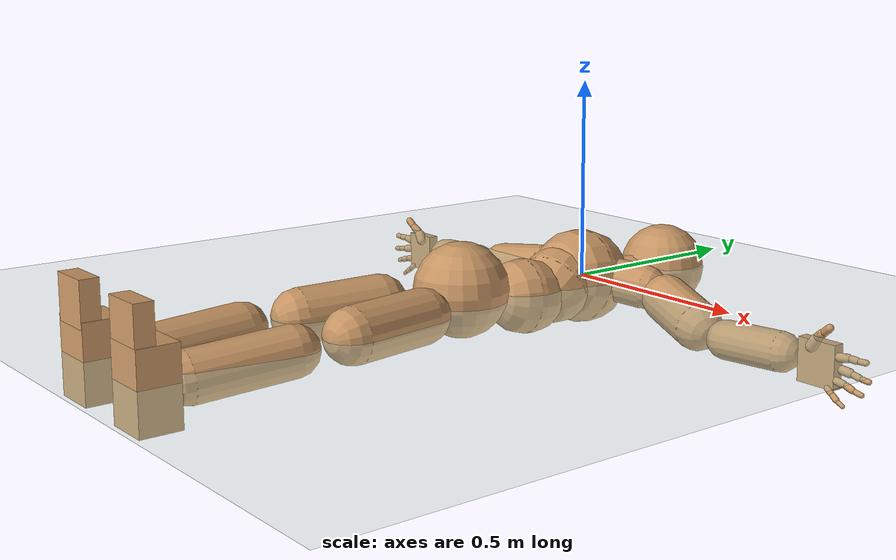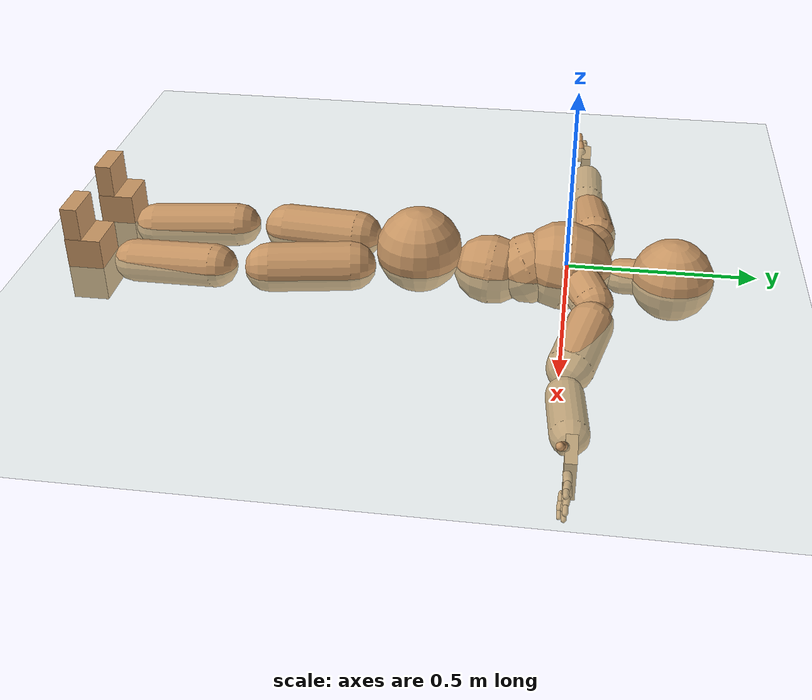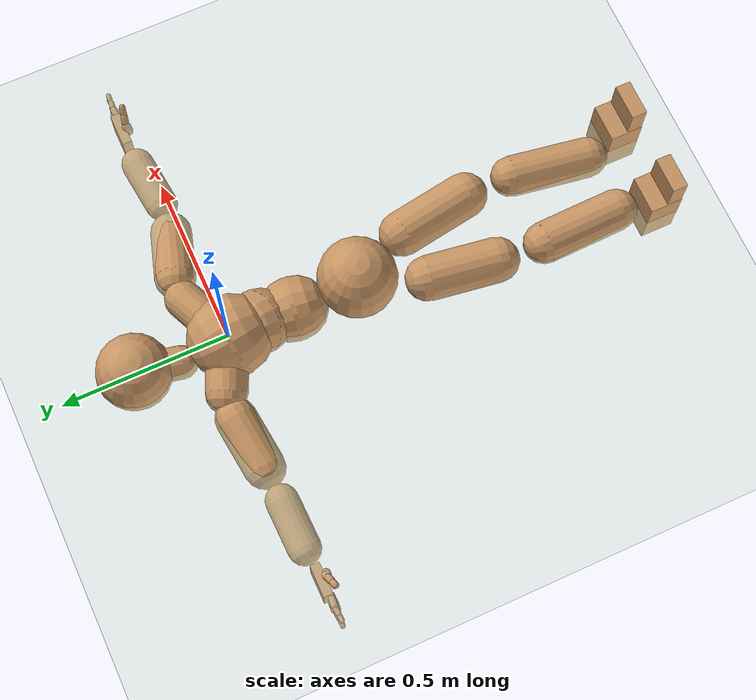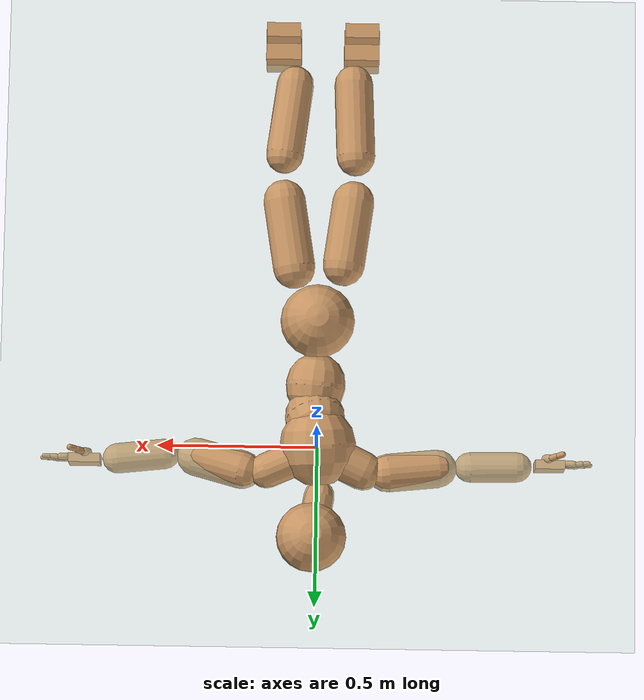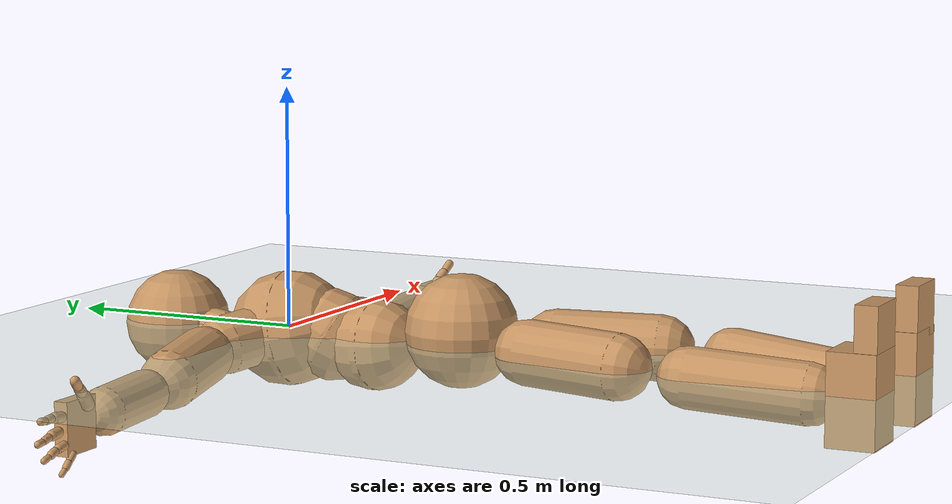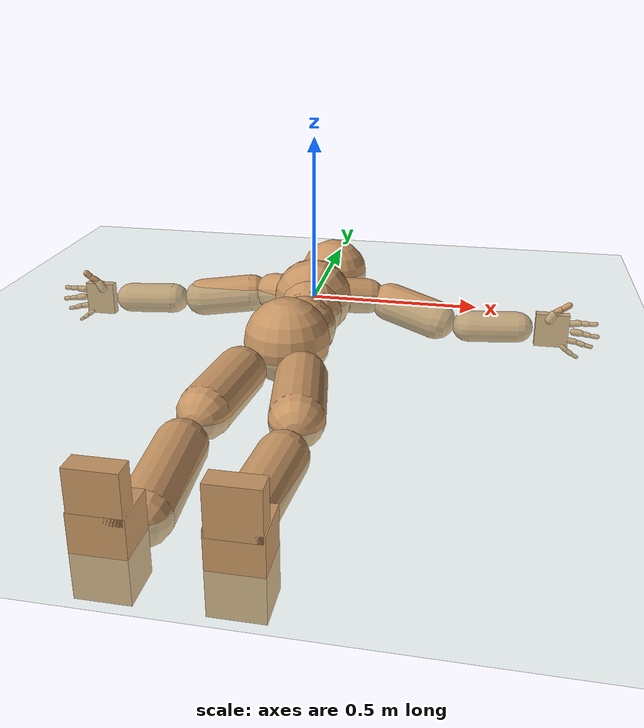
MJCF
<mujoco model="humanoid">
  <compiler coordinate="local"/>
  <default>
    <joint damping="0.0" armature="0.01" stiffness="0.0" limited="true"/>
    <geom conaffinity="1" condim="3" contype="7" margin="0.001" rgba="0.8 0.6 .4 1"/>
  </default>
  <asset>
    <texture type="skybox" builtin="gradient" rgb1=".4 .5 .6" rgb2="0 0 0" width="100" height="100"/>
    <texture builtin="flat" height="1278" mark="cross" markrgb="1 1 1" name="texgeom" random="0.01" rgb1="0.8 0.6 0.4" rgb2="0.8 0.6 0.4" type="cube" width="127"/>
    <texture builtin="checker" height="100" name="texplane" rgb1="0 0 0" rgb2="0.8 0.8 0.8" type="2d" width="100"/>
    <material name="MatPlane" reflectance="0.5" shininess="1" specular="1" texrepeat="60 60" texture="texplane"/>
    <material name="geom" texture="texgeom" texuniform="true"/>
  </asset>
  <worldbody>
    <light cutoff="100" diffuse="1 1 1" dir="-0 0 -1.3" directional="true" exponent="1" pos="0 0 1.3" specular=".1 .1 .1"/>
    <geom conaffinity="1" condim="3" name="floor" pos="0 0 0" rgba="0.8 0.9 0.8 1" size="100 100 .2" type="plane" material="MatPlane"/>
    <body name="Pelvis" pos="0.0035 -0.3998 0.0227">
      <freejoint name="Pelvis"/>
      <geom type="sphere" contype="1" conaffinity="1" density="4629.6296296296305" size="0.1169" pos="0.0000 0.0000 0.0000" name="Pelvis"/>
      <body name="L_Hip" pos="0.0654 -0.1023 -0.0213">
        <joint name="L_Hip_x" type="hinge" pos="0 0 0" axis="1 0 0" user="250 2.5 1 500 10 2" armature="0.01" range="-90.0000 90.0000" damping="0" stiffness="0"/>
        <joint name="L_Hip_y" type="hinge" pos="0 0 0" axis="0 1 0" user="250 2.5 1 500 10 2" armature="0.01" range="-90.0000 90.0000" damping="0" stiffness="0"/>
        <joint name="L_Hip_z" type="hinge" pos="0 0 0" axis="0 0 1" user="250 2.5 1 500 10 2" armature="0.01" range="-90.0000 90.0000" damping="0" stiffness="0"/>
        <geom type="capsule" contype="1" conaffinity="1" density="2040.816327" fromto="0.0115 -0.0719 -0.0002 0.0460 -0.2877 -0.0008" size="0.0669" name="L_Hip"/>
        <body name="L_Knee" pos="0.0575 -0.3597 -0.001">
          <joint name="L_Knee_x" type="hinge" pos="0 0 0" axis="1 0 0" user="250 2.5 1 500 10 2" armature="0.01" range="-180.0000 180.0000" damping="0" stiffness="0"/>
          <joint name="L_Knee_y" type="hinge" pos="0 0 0" axis="0 1 0" user="250 2.5 1 500 10 2" armature="0.01" range="-5.6250 5.6250" damping="0" stiffness="0"/>
          <joint name="L_Knee_z" type="hinge" pos="0 0 0" axis="0 0 1" user="250 2.5 1 500 10 2" armature="0.01" range="-5.6250 5.6250" damping="0" stiffness="0"/>
          <geom type="capsule" contype="1" conaffinity="1" density="1234.567901" fromto="-0.0099 -0.0784 -0.0066 -0.0397 -0.3136 -0.0264" size="0.0594" name="L_Knee"/>
          <body name="L_Ankle" pos="-0.0496 -0.392 -0.033">
            <joint name="L_Ankle_x" type="hinge" pos="0 0 0" axis="1 0 0" user="150 2.5 1 500 10 2" armature="0.01" range="-90.0000 90.0000" damping="0" stiffness="0"/>
            <joint name="L_Ankle_y" type="hinge" pos="0 0 0" axis="0 1 0" user="150 2.5 1 500 10 2" armature="0.01" range="-90.0000 90.0000" damping="0" stiffness="0"/>
            <joint name="L_Ankle_z" type="hinge" pos="0 0 0" axis="0 0 1" user="150 2.5 1 500 10 2" armature="0.01" range="-90.0000 90.0000" damping="0" stiffness="0"/>
            <geom type="box" density="461.918081" pos="0.0469 -0.0269 0.0229" size="0.0556 0.0483 0.0907" quat="1.0000 0.0000 0.0000 0.0000" name="L_Ankle"/>
            <body name="L_Toe" pos="0.0546 -0.0551 0.1235">
              <joint name="L_Toe_x" type="hinge" pos="0 0 0" axis="1 0 0" user="150 1 1 500 1 1" armature="0.01" range="-90.0000 90.0000" damping="0" stiffness="0"/>
              <joint name="L_Toe_y" type="hinge" pos="0 0 0" axis="0 1 0" user="150 1 1 500 1 1" armature="0.01" range="-45.0000 45.0000" damping="0" stiffness="0"/>
              <joint name="L_Toe_z" type="hinge" pos="0 0 0" axis="0 0 1" user="150 1 1 500 1 1" armature="0.01" range="-45.0000 45.0000" damping="0" stiffness="0"/>
              <geom type="box" density="419.109661" pos="-0.0077 0.0025 0.0268" size="0.0528 0.0226 0.0532" quat="1.0000 0.0000 0.0000 0.0000" name="L_Toe"/>
            </body>
          </body>
        </body>
      </body>
      <body name="R_Hip" pos="-0.0701 -0.1155 -0.0138">
        <joint name="R_Hip_x" type="hinge" pos="0 0 0" axis="1 0 0" user="250 2.5 1 500 10 2" armature="0.01" range="-90.0000 90.0000" damping="0" stiffness="0"/>
        <joint name="R_Hip_y" type="hinge" pos="0 0 0" axis="0 1 0" user="250 2.5 1 500 10 2" armature="0.01" range="-90.0000 90.0000" damping="0" stiffness="0"/>
        <joint name="R_Hip_z" type="hinge" pos="0 0 0" axis="0 0 1" user="250 2.5 1 500 10 2" armature="0.01" range="-90.0000 90.0000" damping="0" stiffness="0"/>
        <geom type="capsule" contype="1" conaffinity="1" density="2040.816327" fromto="-0.0093 -0.0683 -0.0023 -0.0373 -0.2733 -0.0091" size="0.0664" name="R_Hip"/>
        <body name="R_Knee" pos="-0.0467 -0.3416 -0.0114">
          <joint name="R_Knee_x" type="hinge" pos="0 0 0" axis="1 0 0" user="250 2.5 1 500 10 2" armature="0.01" range="-180.0000 180.0000" damping="0" stiffness="0"/>
          <joint name="R_Knee_y" type="hinge" pos="0 0 0" axis="0 1 0" user="250 2.5 1 500 10 2" armature="0.01" range="-5.6250 5.6250" damping="0" stiffness="0"/>
          <joint name="R_Knee_z" type="hinge" pos="0 0 0" axis="0 0 1" user="250 2.5 1 500 10 2" armature="0.01" range="-5.6250 5.6250" damping="0" stiffness="0"/>
          <geom type="capsule" contype="1" conaffinity="1" density="1234.567901" fromto="0.0033 -0.0798 -0.0040 0.0133 -0.3191 -0.0160" size="0.0612" name="R_Knee"/>
          <body name="R_Ankle" pos="0.0166 -0.3989 -0.02">
            <joint name="R_Ankle_x" type="hinge" pos="0 0 0" axis="1 0 0" user="150 1 1 500 10 2" armature="0.01" range="-90.0000 90.0000" damping="0" stiffness="0"/>
            <joint name="R_Ankle_y" type="hinge" pos="0 0 0" axis="0 1 0" user="150 1 1 500 10 2" armature="0.01" range="-90.0000 90.0000" damping="0" stiffness="0"/>
            <joint name="R_Ankle_z" type="hinge" pos="0 0 0" axis="0 0 1" user="150 1 1 500 10 2" armature="0.01" range="-90.0000 90.0000" damping="0" stiffness="0"/>
            <geom type="box" density="461.879389" pos="-0.0271 -0.0249 0.0128" size="0.0556 0.0483 0.0907" quat="1.0000 0.0000 0.0000 0.0000" name="R_Ankle"/>
            <body name="R_Toe" pos="-0.0437 -0.0555 0.1243">
              <joint name="R_Toe_x" type="hinge" pos="0 0 0" axis="1 0 0" user="150 1 1 500 1 1" armature="0.01" range="-90.0000 90.0000" damping="0" stiffness="0"/>
              <joint name="R_Toe_y" type="hinge" pos="0 0 0" axis="0 1 0" user="150 1 1 500 1 1" armature="0.01" range="-45.0000 45.0000" damping="0" stiffness="0"/>
              <joint name="R_Toe_z" type="hinge" pos="0 0 0" axis="0 0 1" user="150 1 1 500 1 1" armature="0.01" range="-45.0000 45.0000" damping="0" stiffness="0"/>
              <geom type="box" density="419.112397" pos="0.0166 0.0049 0.0160" size="0.0528 0.0226 0.0532" quat="1.0000 0.0000 0.0000 0.0000" name="R_Toe"/>
            </body>
          </body>
        </body>
      </body>
      <body name="Torso" pos="-0.0039 0.1232 -0.0403">
        <joint name="Torso_x" type="hinge" pos="0 0 0" axis="1 0 0" user="500 5 1 500 10 2" armature="0.01" range="-60.0000 60.0000" damping="0" stiffness="0"/>
        <joint name="Torso_y" type="hinge" pos="0 0 0" axis="0 1 0" user="500 5 1 500 10 2" armature="0.01" range="-60.0000 60.0000" damping="0" stiffness="0"/>
        <joint name="Torso_z" type="hinge" pos="0 0 0" axis="0 0 1" user="500 5 1 500 10 2" armature="0.01" range="-60.0000 60.0000" damping="0" stiffness="0"/>
        <geom type="capsule" contype="1" conaffinity="1" density="2040.816327" fromto="0.0065 0.0670 -0.0050 0.0080 0.0819 -0.0061" size="0.0938" name="Torso"/>
        <body name="Spine" pos="0.0145 0.1489 -0.011">
          <joint name="Spine_x" type="hinge" pos="0 0 0" axis="1 0 0" user="500 5 1 500 10 2" armature="0.01" range="-60.0000 60.0000" damping="0" stiffness="0"/>
          <joint name="Spine_y" type="hinge" pos="0 0 0" axis="0 1 0" user="500 5 1 500 10 2" armature="0.01" range="-60.0000 60.0000" damping="0" stiffness="0"/>
          <joint name="Spine_z" type="hinge" pos="0 0 0" axis="0 0 1" user="500 5 1 500 10 2" armature="0.01" range="-60.0000 60.0000" damping="0" stiffness="0"/>
          <geom type="capsule" contype="1" conaffinity="1" density="2040.816327" fromto="-0.0060 0.0276 0.0167 -0.0074 0.0338 0.0204" size="0.0943" name="Spine"/>
          <body name="Chest" pos="-0.0134 0.0614 0.037">
            <joint name="Chest_x" type="hinge" pos="0 0 0" axis="1 0 0" user="500 5 1 500 10 2" armature="0.01" range="-60.0000 60.0000" damping="0" stiffness="0"/>
            <joint name="Chest_y" type="hinge" pos="0 0 0" axis="0 1 0" user="500 5 1 500 10 2" armature="0.01" range="-60.0000 60.0000" damping="0" stiffness="0"/>
            <joint name="Chest_z" type="hinge" pos="0 0 0" axis="0 0 1" user="500 5 1 500 10 2" armature="0.01" range="-60.0000 60.0000" damping="0" stiffness="0"/>
            <geom type="capsule" contype="1" conaffinity="1" density="2040.816327" fromto="-0.0033 0.0553 -0.0090 -0.0041 0.0676 -0.0110" size="0.1199" name="Chest"/>
            <body name="Neck" pos="-0.0161 0.1823 -0.0382">
              <joint name="Neck_x" type="hinge" pos="0 0 0" axis="1 0 0" user="150 1 1 250 50 4" armature="0.01" range="-180.0000 180.0000" damping="0" stiffness="0"/>
              <joint name="Neck_y" type="hinge" pos="0 0 0" axis="0 1 0" user="150 1 1 250 50 4" armature="0.01" range="-180.0000 180.0000" damping="0" stiffness="0"/>
              <joint name="Neck_z" type="hinge" pos="0 0 0" axis="0 0 1" user="150 1 1 250 50 4" armature="0.01" range="-180.0000 180.0000" damping="0" stiffness="0"/>
              <geom type="capsule" contype="1" conaffinity="1" density="1000" fromto="0.0059 0.0329 0.0036 0.0235 0.1316 0.0145" size="0.0484" name="Neck"/>
              <body name="Head" pos="0.0294 0.1645 0.0181">
                <joint name="Head_x" type="hinge" pos="0 0 0" axis="1 0 0" user="150 1 1 250 50 4" armature="0.01" range="-90.0000 90.0000" damping="0" stiffness="0"/>
                <joint name="Head_y" type="hinge" pos="0 0 0" axis="0 1 0" user="150 1 1 250 50 4" armature="0.01" range="-90.0000 90.0000" damping="0" stiffness="0"/>
                <joint name="Head_z" type="hinge" pos="0 0 0" axis="0 0 1" user="150 1 1 250 50 4" armature="0.01" range="-90.0000 90.0000" damping="0" stiffness="0"/>
                <geom type="sphere" contype="1" conaffinity="1" density="1000" size="0.1099" pos="0.0000 0.0000 0.0000" name="Head"/>
              </body>
            </body>
            <body name="L_Thorax" pos="0.05 0.0935 -0.0077">
              <joint name="L_Thorax_x" type="hinge" pos="0 0 0" axis="1 0 0" user="200 2 1 500 50 4" armature="0.01" range="-180.0000 180.0000" damping="0" stiffness="0"/>
              <joint name="L_Thorax_y" type="hinge" pos="0 0 0" axis="0 1 0" user="200 2 1 500 50 4" armature="0.01" range="-180.0000 180.0000" damping="0" stiffness="0"/>
              <joint name="L_Thorax_z" type="hinge" pos="0 0 0" axis="0 0 1" user="200 2 1 500 50 4" armature="0.01" range="-180.0000 180.0000" damping="0" stiffness="0"/>
              <geom type="capsule" contype="1" conaffinity="1" density="1000" fromto="0.0266 0.0114 -0.0037 0.1063 0.0454 -0.0147" size="0.0557" name="L_Thorax"/>
              <body name="L_Shoulder" pos="0.1328 0.0568 -0.0183">
                <joint name="L_Shoulder_x" type="hinge" pos="0 0 0" axis="1 0 0" user="200 2 1 500 50 4" armature="0.01" range="-180.0000 180.0000" damping="0" stiffness="0"/>
                <joint name="L_Shoulder_y" type="hinge" pos="0 0 0" axis="0 1 0" user="200 2 1 500 50 4" armature="0.01" range="-180.0000 180.0000" damping="0" stiffness="0"/>
                <joint name="L_Shoulder_z" type="hinge" pos="0 0 0" axis="0 0 1" user="200 2 1 500 50 4" armature="0.01" range="-180.0000 180.0000" damping="0" stiffness="0"/>
                <geom type="capsule" contype="1" conaffinity="1" density="1000" fromto="0.0491 -0.0145 -0.0106 0.1965 -0.0579 -0.0425" size="0.0603" name="L_Shoulder"/>
                <body name="L_Elbow" pos="0.2457 -0.0724 -0.0531">
                  <joint name="L_Elbow_x" type="hinge" pos="0 0 0" axis="1 0 0" user="150 1 1 150 10 2" armature="0.01" range="-720.0000 720.0000" damping="0" stiffness="0"/>
                  <joint name="L_Elbow_y" type="hinge" pos="0 0 0" axis="0 1 0" user="150 1 1 150 10 2" armature="0.01" range="-720.0000 720.0000" damping="0" stiffness="0"/>
                  <joint name="L_Elbow_z" type="hinge" pos="0 0 0" axis="0 0 1" user="150 1 1 150 10 2" armature="0.01" range="-720.0000 720.0000" damping="0" stiffness="0"/>
                  <geom type="capsule" contype="1" conaffinity="1" density="1000" fromto="0.0496 0.0055 0.0006 0.1985 0.0220 0.0026" size="0.0474" name="L_Elbow"/>
                  <body name="L_Wrist" pos="0.2481 0.0275 0.0032">
                    <joint name="L_Wrist_x" type="hinge" pos="0 0 0" axis="1 0 0" user="100 1 1 150 1 1" armature="0.01" range="-180.0000 180.0000" damping="0" stiffness="0"/>
                    <joint name="L_Wrist_y" type="hinge" pos="0 0 0" axis="0 1 0" user="100 1 1 150 1 1" armature="0.01" range="-180.0000 180.0000" damping="0" stiffness="0"/>
                    <joint name="L_Wrist_z" type="hinge" pos="0 0 0" axis="0 0 1" user="100 1 1 150 1 1" armature="0.01" range="-180.0000 180.0000" damping="0" stiffness="0"/>
                    <geom type="box" density="1229.675" pos="0.0538 -0.0007 -0.0023" size="0.0499 0.0141 0.0517" quat="1.0000 0.0000 0.0000 0.0000" name="L_Wrist"/>
                    <body name="L_Index1" pos="0.1046 -0.0074 0.0228">
                      <joint name="L_Index1_x" type="hinge" pos="0 0 0" axis="1 0 0" user="100 10 1 150" armature="0.01" range="-180.0000 180.0000" damping="0" stiffness="0"/>
                      <joint name="L_Index1_y" type="hinge" pos="0 0 0" axis="0 1 0" user="100 10 1 150" armature="0.01" range="-180.0000 180.0000" damping="0" stiffness="0"/>
                      <joint name="L_Index1_z" type="hinge" pos="0 0 0" axis="0 0 1" user="100 10 1 150" armature="0.01" range="-180.0000 180.0000" damping="0" stiffness="0"/>
                      <geom type="capsule" contype="1" conaffinity="1" density="1000" fromto="0.0066 0.0006 0.0006 0.0264 0.0022 0.0026" size="0.0103" name="L_Index1"/>
                      <body name="L_Index2" pos="0.033 0.0028 0.0032">
                        <joint name="L_Index2_x" type="hinge" pos="0 0 0" axis="1 0 0" user="100 10 1 150" armature="0.01" range="-180.0000 180.0000" damping="0" stiffness="0"/>
                        <joint name="L_Index2_y" type="hinge" pos="0 0 0" axis="0 1 0" user="100 10 1 150" armature="0.01" range="-180.0000 180.0000" damping="0" stiffness="0"/>
                        <joint name="L_Index2_z" type="hinge" pos="0 0 0" axis="0 0 1" user="100 10 1 150" armature="0.01" range="-180.0000 180.0000" damping="0" stiffness="0"/>
                        <geom type="capsule" contype="1" conaffinity="1" density="1000" fromto="0.0046 -0.0005 -0.0001 0.0185 -0.0020 -0.0002" size="0.0084" name="L_Index2"/>
                        <body name="L_Index3" pos="0.0231 -0.0025 -0.0003">
                          <joint name="L_Index3_x" type="hinge" pos="0 0 0" axis="1 0 0" user="100 10 1 150" armature="0.01" range="-180.0000 180.0000" damping="0" stiffness="0"/>
                          <joint name="L_Index3_y" type="hinge" pos="0 0 0" axis="0 1 0" user="100 10 1 150" armature="0.01" range="-180.0000 180.0000" damping="0" stiffness="0"/>
                          <joint name="L_Index3_z" type="hinge" pos="0 0 0" axis="0 0 1" user="100 10 1 150" armature="0.01" range="-180.0000 180.0000" damping="0" stiffness="0"/>
                          <geom type="capsule" contype="1" conaffinity="1" density="1000" fromto="0.0050 -0.0001 0.0003 0.0201 -0.0004 0.0014" size="0.007" name="L_Index3"/>
                        </body>
                      </body>
                    </body>
                    <body name="L_Middle1" pos="0.1125 -0.0046 -0.0035">
                      <joint name="L_Middle1_x" type="hinge" pos="0 0 0" axis="1 0 0" user="100 10 1 150" armature="0.01" range="-180.0000 180.0000" damping="0" stiffness="0"/>
                      <joint name="L_Middle1_y" type="hinge" pos="0 0 0" axis="0 1 0" user="100 10 1 150" armature="0.01" range="-180.0000 180.0000" damping="0" stiffness="0"/>
                      <joint name="L_Middle1_z" type="hinge" pos="0 0 0" axis="0 0 1" user="100 10 1 150" armature="0.01" range="-180.0000 180.0000" damping="0" stiffness="0"/>
                      <geom type="capsule" contype="1" conaffinity="1" density="1000" fromto="0.0064 0.0002 -0.0008 0.0254 0.0009 -0.0033" size="0.0106" name="L_Middle1"/>
                      <body name="L_Middle2" pos="0.0318 0.0011 -0.0041">
                        <joint name="L_Middle2_x" type="hinge" pos="0 0 0" axis="1 0 0" user="100 10 1 150" armature="0.01" range="-180.0000 180.0000" damping="0" stiffness="0"/>
                        <joint name="L_Middle2_y" type="hinge" pos="0 0 0" axis="0 1 0" user="100 10 1 150" armature="0.01" range="-180.0000 180.0000" damping="0" stiffness="0"/>
                        <joint name="L_Middle2_z" type="hinge" pos="0 0 0" axis="0 0 1" user="100 10 1 150" armature="0.01" range="-180.0000 180.0000" damping="0" stiffness="0"/>
                        <geom type="capsule" contype="1" conaffinity="1" density="1000" fromto="0.0048 -0.0005 -0.0009 0.0193 -0.0018 -0.0035" size="0.0078" name="L_Middle2"/>
                        <body name="L_Middle3" pos="0.0241 -0.0023 -0.0044">
                          <joint name="L_Middle3_x" type="hinge" pos="0 0 0" axis="1 0 0" user="100 10 1 150" armature="0.01" range="-180.0000 180.0000" damping="0" stiffness="0"/>
                          <joint name="L_Middle3_y" type="hinge" pos="0 0 0" axis="0 1 0" user="100 10 1 150" armature="0.01" range="-180.0000 180.0000" damping="0" stiffness="0"/>
                          <joint name="L_Middle3_z" type="hinge" pos="0 0 0" axis="0 0 1" user="100 10 1 150" armature="0.01" range="-180.0000 180.0000" damping="0" stiffness="0"/>
                          <geom type="capsule" contype="1" conaffinity="1" density="1000" fromto="0.0052 -0.0001 -0.0005 0.0209 -0.0002 -0.0019" size="0.0066" name="L_Middle3"/>
                        </body>
                      </body>
                    </body>
                    <body name="L_Pinky1" pos="0.0856 -0.0145 -0.0484">
                      <joint name="L_Pinky1_x" type="hinge" pos="0 0 0" axis="1 0 0" user="100 10 1 150" armature="0.01" range="-180.0000 180.0000" damping="0" stiffness="0"/>
                      <joint name="L_Pinky1_y" type="hinge" pos="0 0 0" axis="0 1 0" user="100 10 1 150" armature="0.01" range="-180.0000 180.0000" damping="0" stiffness="0"/>
                      <joint name="L_Pinky1_z" type="hinge" pos="0 0 0" axis="0 0 1" user="100 10 1 150" armature="0.01" range="-180.0000 180.0000" damping="0" stiffness="0"/>
                      <geom type="capsule" contype="1" conaffinity="1" density="1000" fromto="0.0033 -0.0003 -0.0026 0.0134 -0.0012 -0.0103" size="0.0075" name="L_Pinky1"/>
                      <body name="L_Pinky2" pos="0.0167 -0.0015 -0.0129">
                        <joint name="L_Pinky2_x" type="hinge" pos="0 0 0" axis="1 0 0" user="100 10 1 150" armature="0.01" range="-180.0000 180.0000" damping="0" stiffness="0"/>
                        <joint name="L_Pinky2_y" type="hinge" pos="0 0 0" axis="0 1 0" user="100 10 1 150" armature="0.01" range="-180.0000 180.0000" damping="0" stiffness="0"/>
                        <joint name="L_Pinky2_z" type="hinge" pos="0 0 0" axis="0 0 1" user="100 10 1 150" armature="0.01" range="-180.0000 180.0000" damping="0" stiffness="0"/>
                        <geom type="capsule" contype="1" conaffinity="1" density="1000" fromto="0.0033 -0.0004 -0.0023 0.0132 -0.0017 -0.0092" size="0.0072" name="L_Pinky2"/>
                        <body name="L_Pinky3" pos="0.0165 -0.0021 -0.0115">
                          <joint name="L_Pinky3_x" type="hinge" pos="0 0 0" axis="1 0 0" user="100 10 1 150" armature="0.01" range="-180.0000 180.0000" damping="0" stiffness="0"/>
                          <joint name="L_Pinky3_y" type="hinge" pos="0 0 0" axis="0 1 0" user="100 10 1 150" armature="0.01" range="-180.0000 180.0000" damping="0" stiffness="0"/>
                          <joint name="L_Pinky3_z" type="hinge" pos="0 0 0" axis="0 0 1" user="100 10 1 150" armature="0.01" range="-180.0000 180.0000" damping="0" stiffness="0"/>
                          <geom type="capsule" contype="1" conaffinity="1" density="1000" fromto="0.0037 -0.0000 -0.0019 0.0148 -0.0001 -0.0076" size="0.0053" name="L_Pinky3"/>
                        </body>
                      </body>
                    </body>
                    <body name="L_Ring1" pos="0.0999 -0.0081 -0.03">
                      <joint name="L_Ring1_x" type="hinge" pos="0 0 0" axis="1 0 0" user="100 10 1 150" armature="0.01" range="-180.0000 180.0000" damping="0" stiffness="0"/>
                      <joint name="L_Ring1_y" type="hinge" pos="0 0 0" axis="0 1 0" user="100 10 1 150" armature="0.01" range="-180.0000 180.0000" damping="0" stiffness="0"/>
                      <joint name="L_Ring1_z" type="hinge" pos="0 0 0" axis="0 0 1" user="100 10 1 150" armature="0.01" range="-180.0000 180.0000" damping="0" stiffness="0"/>
                      <geom type="capsule" contype="1" conaffinity="1" density="1000" fromto="0.0059 0.0004 -0.0011 0.0236 0.0014 -0.0044" size="0.009" name="L_Ring1"/>
                      <body name="L_Ring2" pos="0.0296 0.0018 -0.0055">
                        <joint name="L_Ring2_x" type="hinge" pos="0 0 0" axis="1 0 0" user="100 10 1 150" armature="0.01" range="-180.0000 180.0000" damping="0" stiffness="0"/>
                        <joint name="L_Ring2_y" type="hinge" pos="0 0 0" axis="0 1 0" user="100 10 1 150" armature="0.01" range="-180.0000 180.0000" damping="0" stiffness="0"/>
                        <joint name="L_Ring2_z" type="hinge" pos="0 0 0" axis="0 0 1" user="100 10 1 150" armature="0.01" range="-180.0000 180.0000" damping="0" stiffness="0"/>
                        <geom type="capsule" contype="1" conaffinity="1" density="1000" fromto="0.0047 -0.0004 -0.0015 0.0190 -0.0015 -0.0060" size="0.0082" name="L_Ring2"/>
                        <body name="L_Ring3" pos="0.0237 -0.0018 -0.0074">
                          <joint name="L_Ring3_x" type="hinge" pos="0 0 0" axis="1 0 0" user="100 10 1 150" armature="0.01" range="-180.0000 180.0000" damping="0" stiffness="0"/>
                          <joint name="L_Ring3_y" type="hinge" pos="0 0 0" axis="0 1 0" user="100 10 1 150" armature="0.01" range="-180.0000 180.0000" damping="0" stiffness="0"/>
                          <joint name="L_Ring3_z" type="hinge" pos="0 0 0" axis="0 0 1" user="100 10 1 150" armature="0.01" range="-180.0000 180.0000" damping="0" stiffness="0"/>
                          <geom type="capsule" contype="1" conaffinity="1" density="1000" fromto="0.0051 0.0000 -0.0011 0.0206 0.0001 -0.0044" size="0.0062" name="L_Ring3"/>
                        </body>
                      </body>
                    </body>
                    <body name="L_Thumb1" pos="0.04 -0.0197 0.0304">
                      <joint name="L_Thumb1_x" type="hinge" pos="0 0 0" axis="1 0 0" user="100 10 1 150" armature="0.01" range="-180.0000 180.0000" damping="0" stiffness="0"/>
                      <joint name="L_Thumb1_y" type="hinge" pos="0 0 0" axis="0 1 0" user="100 10 1 150" armature="0.01" range="-180.0000 180.0000" damping="0" stiffness="0"/>
                      <joint name="L_Thumb1_z" type="hinge" pos="0 0 0" axis="0 0 1" user="100 10 1 150" armature="0.01" range="-180.0000 180.0000" damping="0" stiffness="0"/>
                      <geom type="capsule" contype="1" conaffinity="1" density="1000" fromto="0.0034 0.0004 0.0055 0.0137 0.0015 0.0219" size="0.0134" name="L_Thumb1"/>
                      <body name="L_Thumb2" pos="0.0171 0.0018 0.0274">
                        <joint name="L_Thumb2_x" type="hinge" pos="0 0 0" axis="1 0 0" user="100 10 1 150" armature="0.01" range="-180.0000 180.0000" damping="0" stiffness="0"/>
                        <joint name="L_Thumb2_y" type="hinge" pos="0 0 0" axis="0 1 0" user="100 10 1 150" armature="0.01" range="-180.0000 180.0000" damping="0" stiffness="0"/>
                        <joint name="L_Thumb2_z" type="hinge" pos="0 0 0" axis="0 0 1" user="100 10 1 150" armature="0.01" range="-180.0000 180.0000" damping="0" stiffness="0"/>
                        <geom type="capsule" contype="1" conaffinity="1" density="1000" fromto="0.0042 -0.0012 0.0033 0.0166 -0.0046 0.0131" size="0.0107" name="L_Thumb2"/>
                        <body name="L_Thumb3" pos="0.0208 -0.0058 0.0164">
                          <joint name="L_Thumb3_x" type="hinge" pos="0 0 0" axis="1 0 0" user="100 10 1 150" armature="0.01" range="-180.0000 180.0000" damping="0" stiffness="0"/>
                          <joint name="L_Thumb3_y" type="hinge" pos="0 0 0" axis="0 1 0" user="100 10 1 150" armature="0.01" range="-180.0000 180.0000" damping="0" stiffness="0"/>
                          <joint name="L_Thumb3_z" type="hinge" pos="0 0 0" axis="0 0 1" user="100 10 1 150" armature="0.01" range="-180.0000 180.0000" damping="0" stiffness="0"/>
                          <geom type="capsule" contype="1" conaffinity="1" density="1000" fromto="0.0046 -0.0008 0.0037 0.0182 -0.0030 0.0147" size="0.0096" name="L_Thumb3"/>
                        </body>
                      </body>
                    </body>
                  </body>
                </body>
              </body>
            </body>
            <body name="R_Thorax" pos="-0.0562 0.0929 -0.0142">
              <joint name="R_Thorax_x" type="hinge" pos="0 0 0" axis="1 0 0" user="200 2 1 150 10 2" armature="0.01" range="-180.0000 180.0000" damping="0" stiffness="0"/>
              <joint name="R_Thorax_y" type="hinge" pos="0 0 0" axis="0 1 0" user="200 2 1 150 10 2" armature="0.01" range="-180.0000 180.0000" damping="0" stiffness="0"/>
              <joint name="R_Thorax_z" type="hinge" pos="0 0 0" axis="0 0 1" user="200 2 1 150 10 2" armature="0.01" range="-180.0000 180.0000" damping="0" stiffness="0"/>
              <geom type="capsule" contype="1" conaffinity="1" density="1000" fromto="-0.0228 0.0104 -0.0036 -0.0911 0.0417 -0.0143" size="0.0612" name="R_Thorax"/>
              <body name="R_Shoulder" pos="-0.1139 0.0521 -0.0178">
                <joint name="R_Shoulder_x" type="hinge" pos="0 0 0" axis="1 0 0" user="200 2 1 250 10 2" armature="0.01" range="-180.0000 180.0000" damping="0" stiffness="0"/>
                <joint name="R_Shoulder_y" type="hinge" pos="0 0 0" axis="0 1 0" user="200 2 1 250 10 2" armature="0.01" range="-180.0000 180.0000" damping="0" stiffness="0"/>
                <joint name="R_Shoulder_z" type="hinge" pos="0 0 0" axis="0 0 1" user="200 2 1 250 10 2" armature="0.01" range="-180.0000 180.0000" damping="0" stiffness="0"/>
                <geom type="capsule" contype="1" conaffinity="1" density="1000" fromto="-0.0528 -0.0061 -0.0065 -0.2112 -0.0243 -0.0259" size="0.0602" name="R_Shoulder"/>
                <body name="R_Elbow" pos="-0.264 -0.0304 -0.0324">
                  <joint name="R_Elbow_x" type="hinge" pos="0 0 0" axis="1 0 0" user="150 1 1 150 10 2" armature="0.01" range="-720.0000 720.0000" damping="0" stiffness="0"/>
                  <joint name="R_Elbow_y" type="hinge" pos="0 0 0" axis="0 1 0" user="150 1 1 150 10 2" armature="0.01" range="-720.0000 720.0000" damping="0" stiffness="0"/>
                  <joint name="R_Elbow_z" type="hinge" pos="0 0 0" axis="0 0 1" user="150 1 1 150 10 2" armature="0.01" range="-720.0000 720.0000" damping="0" stiffness="0"/>
                  <geom type="capsule" contype="1" conaffinity="1" density="1000" fromto="-0.0491 -0.0012 -0.0021 -0.1965 -0.0048 -0.0085" size="0.0477" name="R_Elbow"/>
                  <body name="R_Wrist" pos="-0.2457 -0.006 -0.0106">
                    <joint name="R_Wrist_x" type="hinge" pos="0 0 0" axis="1 0 0" user="100 1 1 150 1 1" armature="0.01" range="-180.0000 180.0000" damping="0" stiffness="0"/>
                    <joint name="R_Wrist_y" type="hinge" pos="0 0 0" axis="0 1 0" user="100 1 1 150 1 1" armature="0.01" range="-180.0000 180.0000" damping="0" stiffness="0"/>
                    <joint name="R_Wrist_z" type="hinge" pos="0 0 0" axis="0 0 1" user="100 1 1 150 1 1" armature="0.01" range="-180.0000 180.0000" damping="0" stiffness="0"/>
                    <geom type="box" density="1260.595653" pos="-0.0553 -0.0039 -0.0032" size="0.047 0.0141 0.0517" quat="1.0000 0.0000 0.0000 0.0000" name="R_Wrist"/>
                    <body name="R_Index1" pos="-0.1028 -0.0106 0.0219">
                      <joint name="R_Index1_x" type="hinge" pos="0 0 0" axis="1 0 0" user="100 10 1 150" armature="0.01" range="-180.0000 180.0000" damping="0" stiffness="0"/>
                      <joint name="R_Index1_y" type="hinge" pos="0 0 0" axis="0 1 0" user="100 10 1 150" armature="0.01" range="-180.0000 180.0000" damping="0" stiffness="0"/>
                      <joint name="R_Index1_z" type="hinge" pos="0 0 0" axis="0 0 1" user="100 10 1 150" armature="0.01" range="-180.0000 180.0000" damping="0" stiffness="0"/>
                      <geom type="capsule" contype="1" conaffinity="1" density="1000" fromto="-0.0066 0.0006 0.0006 -0.0264 0.0022 0.0026" size="0.0103" name="R_Index1"/>
                      <body name="R_Index2" pos="-0.033 0.0028 0.0032">
                        <joint name="R_Index2_x" type="hinge" pos="0 0 0" axis="1 0 0" user="100 10 1 150" armature="0.01" range="-180.0000 180.0000" damping="0" stiffness="0"/>
                        <joint name="R_Index2_y" type="hinge" pos="0 0 0" axis="0 1 0" user="100 10 1 150" armature="0.01" range="-180.0000 180.0000" damping="0" stiffness="0"/>
                        <joint name="R_Index2_z" type="hinge" pos="0 0 0" axis="0 0 1" user="100 10 1 150" armature="0.01" range="-180.0000 180.0000" damping="0" stiffness="0"/>
                        <geom type="capsule" contype="1" conaffinity="1" density="1000" fromto="-0.0046 -0.0005 -0.0001 -0.0185 -0.0020 -0.0002" size="0.0084" name="R_Index2"/>
                        <body name="R_Index3" pos="-0.0231 -0.0025 -0.0003">
                          <joint name="R_Index3_x" type="hinge" pos="0 0 0" axis="1 0 0" user="100 10 1 150" armature="0.01" range="-180.0000 180.0000" damping="0" stiffness="0"/>
                          <joint name="R_Index3_y" type="hinge" pos="0 0 0" axis="0 1 0" user="100 10 1 150" armature="0.01" range="-180.0000 180.0000" damping="0" stiffness="0"/>
                          <joint name="R_Index3_z" type="hinge" pos="0 0 0" axis="0 0 1" user="100 10 1 150" armature="0.01" range="-180.0000 180.0000" damping="0" stiffness="0"/>
                          <geom type="capsule" contype="1" conaffinity="1" density="1000" fromto="-0.0042 -0.0001 0.0003 -0.0169 -0.0004 0.0014" size="0.0073" name="R_Index3"/>
                        </body>
                      </body>
                    </body>
                    <body name="R_Middle1" pos="-0.1107 -0.0078 -0.0044">
                      <joint name="R_Middle1_x" type="hinge" pos="0 0 0" axis="1 0 0" user="100 10 1 150" armature="0.01" range="-180.0000 180.0000" damping="0" stiffness="0"/>
                      <joint name="R_Middle1_y" type="hinge" pos="0 0 0" axis="0 1 0" user="100 10 1 150" armature="0.01" range="-180.0000 180.0000" damping="0" stiffness="0"/>
                      <joint name="R_Middle1_z" type="hinge" pos="0 0 0" axis="0 0 1" user="100 10 1 150" armature="0.01" range="-180.0000 180.0000" damping="0" stiffness="0"/>
                      <geom type="capsule" contype="1" conaffinity="1" density="1000" fromto="-0.0064 0.0002 -0.0008 -0.0254 0.0009 -0.0033" size="0.0106" name="R_Middle1"/>
                      <body name="R_Middle2" pos="-0.0318 0.0011 -0.0041">
                        <joint name="R_Middle2_x" type="hinge" pos="0 0 0" axis="1 0 0" user="100 10 1 150" armature="0.01" range="-180.0000 180.0000" damping="0" stiffness="0"/>
                        <joint name="R_Middle2_y" type="hinge" pos="0 0 0" axis="0 1 0" user="100 10 1 150" armature="0.01" range="-180.0000 180.0000" damping="0" stiffness="0"/>
                        <joint name="R_Middle2_z" type="hinge" pos="0 0 0" axis="0 0 1" user="100 10 1 150" armature="0.01" range="-180.0000 180.0000" damping="0" stiffness="0"/>
                        <geom type="capsule" contype="1" conaffinity="1" density="1000" fromto="-0.0048 -0.0005 -0.0009 -0.0193 -0.0018 -0.0035" size="0.0078" name="R_Middle2"/>
                        <body name="R_Middle3" pos="-0.0241 -0.0023 -0.0044">
                          <joint name="R_Middle3_x" type="hinge" pos="0 0 0" axis="1 0 0" user="100 10 1 150" armature="0.01" range="-180.0000 180.0000" damping="0" stiffness="0"/>
                          <joint name="R_Middle3_y" type="hinge" pos="0 0 0" axis="0 1 0" user="100 10 1 150" armature="0.01" range="-180.0000 180.0000" damping="0" stiffness="0"/>
                          <joint name="R_Middle3_z" type="hinge" pos="0 0 0" axis="0 0 1" user="100 10 1 150" armature="0.01" range="-180.0000 180.0000" damping="0" stiffness="0"/>
                          <geom type="capsule" contype="1" conaffinity="1" density="1000" fromto="-0.0044 -0.0001 -0.0005 -0.0177 -0.0002 -0.0019" size="0.0069" name="R_Middle3"/>
                        </body>
                      </body>
                    </body>
                    <body name="R_Pinky1" pos="-0.0838 -0.0177 -0.0493">
                      <joint name="R_Pinky1_x" type="hinge" pos="0 0 0" axis="1 0 0" user="100 10 1 150" armature="0.01" range="-180.0000 180.0000" damping="0" stiffness="0"/>
                      <joint name="R_Pinky1_y" type="hinge" pos="0 0 0" axis="0 1 0" user="100 10 1 150" armature="0.01" range="-180.0000 180.0000" damping="0" stiffness="0"/>
                      <joint name="R_Pinky1_z" type="hinge" pos="0 0 0" axis="0 0 1" user="100 10 1 150" armature="0.01" range="-180.0000 180.0000" damping="0" stiffness="0"/>
                      <geom type="capsule" contype="1" conaffinity="1" density="1000" fromto="-0.0033 -0.0003 -0.0026 -0.0134 -0.0012 -0.0103" size="0.0075" name="R_Pinky1"/>
                      <body name="R_Pinky2" pos="-0.0167 -0.0015 -0.0129">
                        <joint name="R_Pinky2_x" type="hinge" pos="0 0 0" axis="1 0 0" user="100 10 1 150" armature="0.01" range="-180.0000 180.0000" damping="0" stiffness="0"/>
                        <joint name="R_Pinky2_y" type="hinge" pos="0 0 0" axis="0 1 0" user="100 10 1 150" armature="0.01" range="-180.0000 180.0000" damping="0" stiffness="0"/>
                        <joint name="R_Pinky2_z" type="hinge" pos="0 0 0" axis="0 0 1" user="100 10 1 150" armature="0.01" range="-180.0000 180.0000" damping="0" stiffness="0"/>
                        <geom type="capsule" contype="1" conaffinity="1" density="1000" fromto="-0.0033 -0.0004 -0.0023 -0.0132 -0.0017 -0.0092" size="0.0072" name="R_Pinky2"/>
                        <body name="R_Pinky3" pos="-0.0165 -0.0021 -0.0115">
                          <joint name="R_Pinky3_x" type="hinge" pos="0 0 0" axis="1 0 0" user="100 10 1 150" armature="0.01" range="-180.0000 180.0000" damping="0" stiffness="0"/>
                          <joint name="R_Pinky3_y" type="hinge" pos="0 0 0" axis="0 1 0" user="100 10 1 150" armature="0.01" range="-180.0000 180.0000" damping="0" stiffness="0"/>
                          <joint name="R_Pinky3_z" type="hinge" pos="0 0 0" axis="0 0 1" user="100 10 1 150" armature="0.01" range="-180.0000 180.0000" damping="0" stiffness="0"/>
                          <geom type="capsule" contype="1" conaffinity="1" density="1000" fromto="-0.0029 -0.0000 -0.0019 -0.0116 -0.0001 -0.0076" size="0.0056" name="R_Pinky3"/>
                        </body>
                      </body>
                    </body>
                    <body name="R_Ring1" pos="-0.0981 -0.0113 -0.0309">
                      <joint name="R_Ring1_x" type="hinge" pos="0 0 0" axis="1 0 0" user="100 10 1 150" armature="0.01" range="-180.0000 180.0000" damping="0" stiffness="0"/>
                      <joint name="R_Ring1_y" type="hinge" pos="0 0 0" axis="0 1 0" user="100 10 1 150" armature="0.01" range="-180.0000 180.0000" damping="0" stiffness="0"/>
                      <joint name="R_Ring1_z" type="hinge" pos="0 0 0" axis="0 0 1" user="100 10 1 150" armature="0.01" range="-180.0000 180.0000" damping="0" stiffness="0"/>
                      <geom type="capsule" contype="1" conaffinity="1" density="1000" fromto="-0.0059 0.0003 -0.0011 -0.0236 0.0014 -0.0044" size="0.009" name="R_Ring1"/>
                      <body name="R_Ring2" pos="-0.0296 0.0017 -0.0055">
                        <joint name="R_Ring2_x" type="hinge" pos="0 0 0" axis="1 0 0" user="100 10 1 150" armature="0.01" range="-180.0000 180.0000" damping="0" stiffness="0"/>
                        <joint name="R_Ring2_y" type="hinge" pos="0 0 0" axis="0 1 0" user="100 10 1 150" armature="0.01" range="-180.0000 180.0000" damping="0" stiffness="0"/>
                        <joint name="R_Ring2_z" type="hinge" pos="0 0 0" axis="0 0 1" user="100 10 1 150" armature="0.01" range="-180.0000 180.0000" damping="0" stiffness="0"/>
                        <geom type="capsule" contype="1" conaffinity="1" density="1000" fromto="-0.0047 -0.0004 -0.0015 -0.0190 -0.0015 -0.0060" size="0.0082" name="R_Ring2"/>
                        <body name="R_Ring3" pos="-0.0237 -0.0018 -0.0074">
                          <joint name="R_Ring3_x" type="hinge" pos="0 0 0" axis="1 0 0" user="100 10 1 150" armature="0.01" range="-180.0000 180.0000" damping="0" stiffness="0"/>
                          <joint name="R_Ring3_y" type="hinge" pos="0 0 0" axis="0 1 0" user="100 10 1 150" armature="0.01" range="-180.0000 180.0000" damping="0" stiffness="0"/>
                          <joint name="R_Ring3_z" type="hinge" pos="0 0 0" axis="0 0 1" user="100 10 1 150" armature="0.01" range="-180.0000 180.0000" damping="0" stiffness="0"/>
                          <geom type="capsule" contype="1" conaffinity="1" density="1000" fromto="-0.0043 0.0000 -0.0011 -0.0174 0.0001 -0.0044" size="0.0065" name="R_Ring3"/>
                        </body>
                      </body>
                    </body>
                    <body name="R_Thumb1" pos="-0.0383 -0.0229 0.0295">
                      <joint name="R_Thumb1_x" type="hinge" pos="0 0 0" axis="1 0 0" user="100 10 1 150" armature="0.01" range="-180.0000 180.0000" damping="0" stiffness="0"/>
                      <joint name="R_Thumb1_y" type="hinge" pos="0 0 0" axis="0 1 0" user="100 10 1 150" armature="0.01" range="-180.0000 180.0000" damping="0" stiffness="0"/>
                      <joint name="R_Thumb1_z" type="hinge" pos="0 0 0" axis="0 0 1" user="100 10 1 150" armature="0.01" range="-180.0000 180.0000" damping="0" stiffness="0"/>
                      <geom type="capsule" contype="1" conaffinity="1" density="1000" fromto="-0.0034 0.0004 0.0055 -0.0137 0.0015 0.0219" size="0.0134" name="R_Thumb1"/>
                      <body name="R_Thumb2" pos="-0.0171 0.0018 0.0274">
                        <joint name="R_Thumb2_x" type="hinge" pos="0 0 0" axis="1 0 0" user="100 10 1 150" armature="0.01" range="-180.0000 180.0000" damping="0" stiffness="0"/>
                        <joint name="R_Thumb2_y" type="hinge" pos="0 0 0" axis="0 1 0" user="100 10 1 150" armature="0.01" range="-180.0000 180.0000" damping="0" stiffness="0"/>
                        <joint name="R_Thumb2_z" type="hinge" pos="0 0 0" axis="0 0 1" user="100 10 1 150" armature="0.01" range="-180.0000 180.0000" damping="0" stiffness="0"/>
                        <geom type="capsule" contype="1" conaffinity="1" density="1000" fromto="-0.0042 -0.0011 0.0033 -0.0166 -0.0046 0.0131" size="0.0107" name="R_Thumb2"/>
                        <body name="R_Thumb3" pos="-0.0208 -0.0057 0.0164">
                          <joint name="R_Thumb3_x" type="hinge" pos="0 0 0" axis="1 0 0" user="100 10 1 150" armature="0.01" range="-180.0000 180.0000" damping="0" stiffness="0"/>
                          <joint name="R_Thumb3_y" type="hinge" pos="0 0 0" axis="0 1 0" user="100 10 1 150" armature="0.01" range="-180.0000 180.0000" damping="0" stiffness="0"/>
                          <joint name="R_Thumb3_z" type="hinge" pos="0 0 0" axis="0 0 1" user="100 10 1 150" armature="0.01" range="-180.0000 180.0000" damping="0" stiffness="0"/>
                          <geom type="capsule" contype="1" conaffinity="1" density="1000" fromto="-0.0038 -0.0007 0.0037 -0.0150 -0.0030 0.0147" size="0.0098" name="R_Thumb3"/>
                        </body>
                      </body>
                    </body>
                  </body>
                </body>
              </body>
            </body>
          </body>
        </body>
      </body>
    </body>
  </worldbody>
  <actuator>
    <motor name="L_Hip_x" joint="L_Hip_x" gear="1"/>
    <motor name="L_Hip_y" joint="L_Hip_y" gear="1"/>
    <motor name="L_Hip_z" joint="L_Hip_z" gear="1"/>
    <motor name="L_Knee_x" joint="L_Knee_x" gear="1"/>
    <motor name="L_Knee_y" joint="L_Knee_y" gear="1"/>
    <motor name="L_Knee_z" joint="L_Knee_z" gear="1"/>
    <motor name="L_Ankle_x" joint="L_Ankle_x" gear="1"/>
    <motor name="L_Ankle_y" joint="L_Ankle_y" gear="1"/>
    <motor name="L_Ankle_z" joint="L_Ankle_z" gear="1"/>
    <motor name="L_Toe_x" joint="L_Toe_x" gear="1"/>
    <motor name="L_Toe_y" joint="L_Toe_y" gear="1"/>
    <motor name="L_Toe_z" joint="L_Toe_z" gear="1"/>
    <motor name="R_Hip_x" joint="R_Hip_x" gear="1"/>
    <motor name="R_Hip_y" joint="R_Hip_y" gear="1"/>
    <motor name="R_Hip_z" joint="R_Hip_z" gear="1"/>
    <motor name="R_Knee_x" joint="R_Knee_x" gear="1"/>
    <motor name="R_Knee_y" joint="R_Knee_y" gear="1"/>
    <motor name="R_Knee_z" joint="R_Knee_z" gear="1"/>
    <motor name="R_Ankle_x" joint="R_Ankle_x" gear="1"/>
    <motor name="R_Ankle_y" joint="R_Ankle_y" gear="1"/>
    <motor name="R_Ankle_z" joint="R_Ankle_z" gear="1"/>
    <motor name="R_Toe_x" joint="R_Toe_x" gear="1"/>
    <motor name="R_Toe_y" joint="R_Toe_y" gear="1"/>
    <motor name="R_Toe_z" joint="R_Toe_z" gear="1"/>
    <motor name="Torso_x" joint="Torso_x" gear="1"/>
    <motor name="Torso_y" joint="Torso_y" gear="1"/>
    <motor name="Torso_z" joint="Torso_z" gear="1"/>
    <motor name="Spine_x" joint="Spine_x" gear="1"/>
    <motor name="Spine_y" joint="Spine_y" gear="1"/>
    <motor name="Spine_z" joint="Spine_z" gear="1"/>
    <motor name="Chest_x" joint="Chest_x" gear="1"/>
    <motor name="Chest_y" joint="Chest_y" gear="1"/>
    <motor name="Chest_z" joint="Chest_z" gear="1"/>
    <motor name="Neck_x" joint="Neck_x" gear="1"/>
    <motor name="Neck_y" joint="Neck_y" gear="1"/>
    <motor name="Neck_z" joint="Neck_z" gear="1"/>
    <motor name="Head_x" joint="Head_x" gear="1"/>
    <motor name="Head_y" joint="Head_y" gear="1"/>
    <motor name="Head_z" joint="Head_z" gear="1"/>
    <motor name="L_Thorax_x" joint="L_Thorax_x" gear="1"/>
    <motor name="L_Thorax_y" joint="L_Thorax_y" gear="1"/>
    <motor name="L_Thorax_z" joint="L_Thorax_z" gear="1"/>
    <motor name="L_Shoulder_x" joint="L_Shoulder_x" gear="1"/>
    <motor name="L_Shoulder_y" joint="L_Shoulder_y" gear="1"/>
    <motor name="L_Shoulder_z" joint="L_Shoulder_z" gear="1"/>
    <motor name="L_Elbow_x" joint="L_Elbow_x" gear="1"/>
    <motor name="L_Elbow_y" joint="L_Elbow_y" gear="1"/>
    <motor name="L_Elbow_z" joint="L_Elbow_z" gear="1"/>
    <motor name="L_Wrist_x" joint="L_Wrist_x" gear="1"/>
    <motor name="L_Wrist_y" joint="L_Wrist_y" gear="1"/>
    <motor name="L_Wrist_z" joint="L_Wrist_z" gear="1"/>
    <motor name="L_Index1_x" joint="L_Index1_x" gear="1"/>
    <motor name="L_Index1_y" joint="L_Index1_y" gear="1"/>
    <motor name="L_Index1_z" joint="L_Index1_z" gear="1"/>
    <motor name="L_Index2_x" joint="L_Index2_x" gear="1"/>
    <motor name="L_Index2_y" joint="L_Index2_y" gear="1"/>
    <motor name="L_Index2_z" joint="L_Index2_z" gear="1"/>
    <motor name="L_Index3_x" joint="L_Index3_x" gear="1"/>
    <motor name="L_Index3_y" joint="L_Index3_y" gear="1"/>
    <motor name="L_Index3_z" joint="L_Index3_z" gear="1"/>
    <motor name="L_Middle1_x" joint="L_Middle1_x" gear="1"/>
    <motor name="L_Middle1_y" joint="L_Middle1_y" gear="1"/>
    <motor name="L_Middle1_z" joint="L_Middle1_z" gear="1"/>
    <motor name="L_Middle2_x" joint="L_Middle2_x" gear="1"/>
    <motor name="L_Middle2_y" joint="L_Middle2_y" gear="1"/>
    <motor name="L_Middle2_z" joint="L_Middle2_z" gear="1"/>
    <motor name="L_Middle3_x" joint="L_Middle3_x" gear="1"/>
    <motor name="L_Middle3_y" joint="L_Middle3_y" gear="1"/>
    <motor name="L_Middle3_z" joint="L_Middle3_z" gear="1"/>
    <motor name="L_Pinky1_x" joint="L_Pinky1_x" gear="1"/>
    <motor name="L_Pinky1_y" joint="L_Pinky1_y" gear="1"/>
    <motor name="L_Pinky1_z" joint="L_Pinky1_z" gear="1"/>
    <motor name="L_Pinky2_x" joint="L_Pinky2_x" gear="1"/>
    <motor name="L_Pinky2_y" joint="L_Pinky2_y" gear="1"/>
    <motor name="L_Pinky2_z" joint="L_Pinky2_z" gear="1"/>
    <motor name="L_Pinky3_x" joint="L_Pinky3_x" gear="1"/>
    <motor name="L_Pinky3_y" joint="L_Pinky3_y" gear="1"/>
    <motor name="L_Pinky3_z" joint="L_Pinky3_z" gear="1"/>
    <motor name="L_Ring1_x" joint="L_Ring1_x" gear="1"/>
    <motor name="L_Ring1_y" joint="L_Ring1_y" gear="1"/>
    <motor name="L_Ring1_z" joint="L_Ring1_z" gear="1"/>
    <motor name="L_Ring2_x" joint="L_Ring2_x" gear="1"/>
    <motor name="L_Ring2_y" joint="L_Ring2_y" gear="1"/>
    <motor name="L_Ring2_z" joint="L_Ring2_z" gear="1"/>
    <motor name="L_Ring3_x" joint="L_Ring3_x" gear="1"/>
    <motor name="L_Ring3_y" joint="L_Ring3_y" gear="1"/>
    <motor name="L_Ring3_z" joint="L_Ring3_z" gear="1"/>
    <motor name="L_Thumb1_x" joint="L_Thumb1_x" gear="1"/>
    <motor name="L_Thumb1_y" joint="L_Thumb1_y" gear="1"/>
    <motor name="L_Thumb1_z" joint="L_Thumb1_z" gear="1"/>
    <motor name="L_Thumb2_x" joint="L_Thumb2_x" gear="1"/>
    <motor name="L_Thumb2_y" joint="L_Thumb2_y" gear="1"/>
    <motor name="L_Thumb2_z" joint="L_Thumb2_z" gear="1"/>
    <motor name="L_Thumb3_x" joint="L_Thumb3_x" gear="1"/>
    <motor name="L_Thumb3_y" joint="L_Thumb3_y" gear="1"/>
    <motor name="L_Thumb3_z" joint="L_Thumb3_z" gear="1"/>
    <motor name="R_Thorax_x" joint="R_Thorax_x" gear="1"/>
    <motor name="R_Thorax_y" joint="R_Thorax_y" gear="1"/>
    <motor name="R_Thorax_z" joint="R_Thorax_z" gear="1"/>
    <motor name="R_Shoulder_x" joint="R_Shoulder_x" gear="1"/>
    <motor name="R_Shoulder_y" joint="R_Shoulder_y" gear="1"/>
    <motor name="R_Shoulder_z" joint="R_Shoulder_z" gear="1"/>
    <motor name="R_Elbow_x" joint="R_Elbow_x" gear="1"/>
    <motor name="R_Elbow_y" joint="R_Elbow_y" gear="1"/>
    <motor name="R_Elbow_z" joint="R_Elbow_z" gear="1"/>
    <motor name="R_Wrist_x" joint="R_Wrist_x" gear="1"/>
    <motor name="R_Wrist_y" joint="R_Wrist_y" gear="1"/>
    <motor name="R_Wrist_z" joint="R_Wrist_z" gear="1"/>
    <motor name="R_Index1_x" joint="R_Index1_x" gear="1"/>
    <motor name="R_Index1_y" joint="R_Index1_y" gear="1"/>
    <motor name="R_Index1_z" joint="R_Index1_z" gear="1"/>
    <motor name="R_Index2_x" joint="R_Index2_x" gear="1"/>
    <motor name="R_Index2_y" joint="R_Index2_y" gear="1"/>
    <motor name="R_Index2_z" joint="R_Index2_z" gear="1"/>
    <motor name="R_Index3_x" joint="R_Index3_x" gear="1"/>
    <motor name="R_Index3_y" joint="R_Index3_y" gear="1"/>
    <motor name="R_Index3_z" joint="R_Index3_z" gear="1"/>
    <motor name="R_Middle1_x" joint="R_Middle1_x" gear="1"/>
    <motor name="R_Middle1_y" joint="R_Middle1_y" gear="1"/>
    <motor name="R_Middle1_z" joint="R_Middle1_z" gear="1"/>
    <motor name="R_Middle2_x" joint="R_Middle2_x" gear="1"/>
    <motor name="R_Middle2_y" joint="R_Middle2_y" gear="1"/>
    <motor name="R_Middle2_z" joint="R_Middle2_z" gear="1"/>
    <motor name="R_Middle3_x" joint="R_Middle3_x" gear="1"/>
    <motor name="R_Middle3_y" joint="R_Middle3_y" gear="1"/>
    <motor name="R_Middle3_z" joint="R_Middle3_z" gear="1"/>
    <motor name="R_Pinky1_x" joint="R_Pinky1_x" gear="1"/>
    <motor name="R_Pinky1_y" joint="R_Pinky1_y" gear="1"/>
    <motor name="R_Pinky1_z" joint="R_Pinky1_z" gear="1"/>
    <motor name="R_Pinky2_x" joint="R_Pinky2_x" gear="1"/>
    <motor name="R_Pinky2_y" joint="R_Pinky2_y" gear="1"/>
    <motor name="R_Pinky2_z" joint="R_Pinky2_z" gear="1"/>
    <motor name="R_Pinky3_x" joint="R_Pinky3_x" gear="1"/>
    <motor name="R_Pinky3_y" joint="R_Pinky3_y" gear="1"/>
    <motor name="R_Pinky3_z" joint="R_Pinky3_z" gear="1"/>
    <motor name="R_Ring1_x" joint="R_Ring1_x" gear="1"/>
    <motor name="R_Ring1_y" joint="R_Ring1_y" gear="1"/>
    <motor name="R_Ring1_z" joint="R_Ring1_z" gear="1"/>
    <motor name="R_Ring2_x" joint="R_Ring2_x" gear="1"/>
    <motor name="R_Ring2_y" joint="R_Ring2_y" gear="1"/>
    <motor name="R_Ring2_z" joint="R_Ring2_z" gear="1"/>
    <motor name="R_Ring3_x" joint="R_Ring3_x" gear="1"/>
    <motor name="R_Ring3_y" joint="R_Ring3_y" gear="1"/>
    <motor name="R_Ring3_z" joint="R_Ring3_z" gear="1"/>
    <motor name="R_Thumb1_x" joint="R_Thumb1_x" gear="1"/>
    <motor name="R_Thumb1_y" joint="R_Thumb1_y" gear="1"/>
    <motor name="R_Thumb1_z" joint="R_Thumb1_z" gear="1"/>
    <motor name="R_Thumb2_x" joint="R_Thumb2_x" gear="1"/>
    <motor name="R_Thumb2_y" joint="R_Thumb2_y" gear="1"/>
    <motor name="R_Thumb2_z" joint="R_Thumb2_z" gear="1"/>
    <motor name="R_Thumb3_x" joint="R_Thumb3_x" gear="1"/>
    <motor name="R_Thumb3_y" joint="R_Thumb3_y" gear="1"/>
    <motor name="R_Thumb3_z" joint="R_Thumb3_z" gear="1"/>
  </actuator>
  <contact>
    <exclude body1="Torso" body2="Chest"/>
    <exclude body1="Head" body2="Chest"/>
    <exclude body1="R_Knee" body2="R_Toe"/>
    <exclude body1="R_Knee" body2="L_Ankle"/>
    <exclude body1="R_Knee" body2="L_Toe"/>
    <exclude body1="L_Knee" body2="L_Toe"/>
    <exclude body1="L_Knee" body2="R_Ankle"/>
    <exclude body1="L_Knee" body2="R_Toe"/>
    <exclude body1="L_Shoulder" body2="Chest"/>
    <exclude body1="R_Shoulder" body2="Chest"/>
  </contact>
  <sensor/>
  <size njmax="700" nconmax="700"/>
</mujoco>
